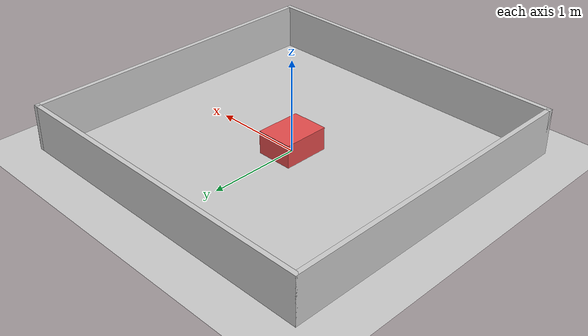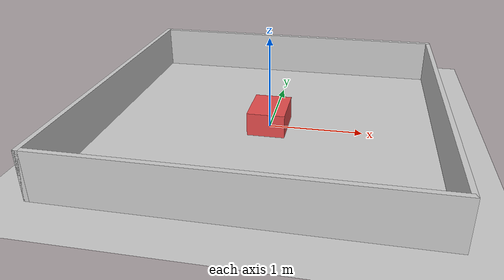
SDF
<?xml version="1.0"?>
<!-- 자동 생성됨: scripts/make_demo_world.py — 직접 편집하지 말 것 -->
<!-- 방 내부 3.5 x 3.4 m, 중앙에 모형배 0.4 x 0.5 m -->
<sdf version="1.6">
  <world name="demo_room">

    <include><uri>model://sun</uri></include>
    <include><uri>model://ground_plane</uri></include>

    <physics type="ode">
      <max_step_size>0.001</max_step_size>
      <real_time_factor>1.0</real_time_factor>
      <real_time_update_rate>1000</real_time_update_rate>
      <ode>
        <solver>
          <type>quick</type>
          <iters>150</iters>          <!-- 기본 50 -> 150. 접촉 수렴 개선 -->
          <sor>1.3</sor>
        </solver>
        <constraints>
          <cfm>0.00001</cfm>          <!-- 접촉을 아주 약간 무르게 -> 튕김 감소 -->
          <erp>0.2</erp>
          <contact_max_correcting_vel>100</contact_max_correcting_vel>
          <contact_surface_layer>0.001</contact_surface_layer>
        </constraints>
      </ode>
    </physics>

    <!-- 벽: static이라 물리 연산 대상이 아니고 충돌체로만 동작 -->
    <model name="room_walls">
      <static>true</static>
      <link name="wall_north">
        <pose>0.0000 1.7250 0.2500 0 0 0</pose>
        <collision name="wall_north_collision">
          <geometry><box><size>3.6000 0.0500 0.5000</size></box></geometry>
        </collision>
        <visual name="wall_north_visual">
          <geometry><box><size>3.6000 0.0500 0.5000</size></box></geometry>
          <material><ambient>0.7 0.7 0.7 1</ambient><diffuse>0.8 0.8 0.8 1</diffuse></material>
        </visual>
      </link>
      <link name="wall_south">
        <pose>0.0000 -1.7250 0.2500 0 0 0</pose>
        <collision name="wall_south_collision">
          <geometry><box><size>3.6000 0.0500 0.5000</size></box></geometry>
        </collision>
        <visual name="wall_south_visual">
          <geometry><box><size>3.6000 0.0500 0.5000</size></box></geometry>
          <material><ambient>0.7 0.7 0.7 1</ambient><diffuse>0.8 0.8 0.8 1</diffuse></material>
        </visual>
      </link>
      <link name="wall_east">
        <pose>1.7750 0.0000 0.2500 0 0 0</pose>
        <collision name="wall_east_collision">
          <geometry><box><size>0.0500 3.5000 0.5000</size></box></geometry>
        </collision>
        <visual name="wall_east_visual">
          <geometry><box><size>0.0500 3.5000 0.5000</size></box></geometry>
          <material><ambient>0.7 0.7 0.7 1</ambient><diffuse>0.8 0.8 0.8 1</diffuse></material>
        </visual>
      </link>
      <link name="wall_west">
        <pose>-1.7750 0.0000 0.2500 0 0 0</pose>
        <collision name="wall_west_collision">
          <geometry><box><size>0.0500 3.5000 0.5000</size></box></geometry>
        </collision>
        <visual name="wall_west_visual">
          <geometry><box><size>0.0500 3.5000 0.5000</size></box></geometry>
          <material><ambient>0.7 0.7 0.7 1</ambient><diffuse>0.8 0.8 0.8 1</diffuse></material>
        </visual>
      </link>
    </model>

    <!-- 모형배(레고). 실물에서는 이 자리에 배가 놓이고 로봇이 주위를 돈다.
         라이다 높이(0.2m)보다 높아야 스캔에 잡힌다. -->
    <model name="ship_block">
      <static>true</static>
      <link name="ship_link">
        <pose>0.0000 0.0000 0.1250 0 0 0</pose>
        <collision name="ship_collision">
          <geometry><box><size>0.4000 0.5000 0.2500</size></box></geometry>
        </collision>
        <visual name="ship_visual">
          <geometry><box><size>0.4000 0.5000 0.2500</size></box></geometry>
          <material><ambient>0.8 0.2 0.2 1</ambient><diffuse>0.9 0.3 0.3 1</diffuse></material>
        </visual>
      </link>
    </model>

    <gui>
      <camera name="user_camera">
        <pose>0 -4.5 4.0 0 0.75 1.5708</pose>
      </camera>
    </gui>

  </world>
</sdf>
